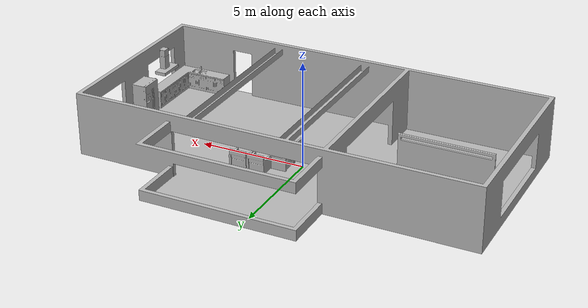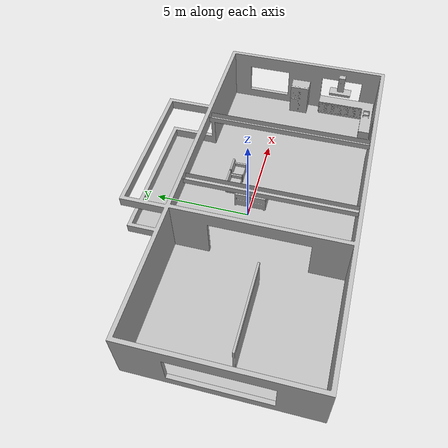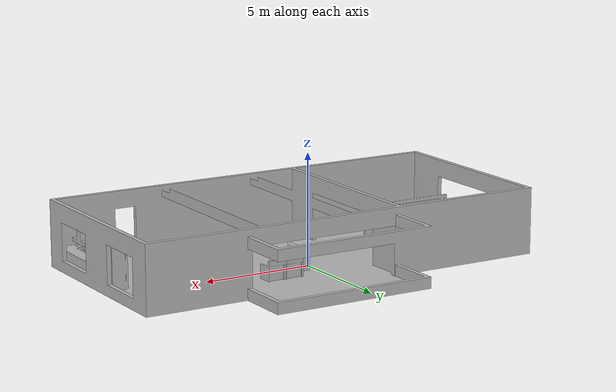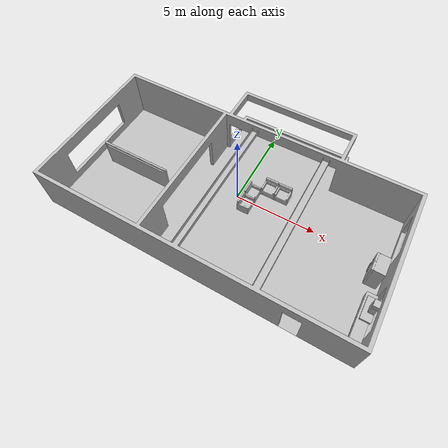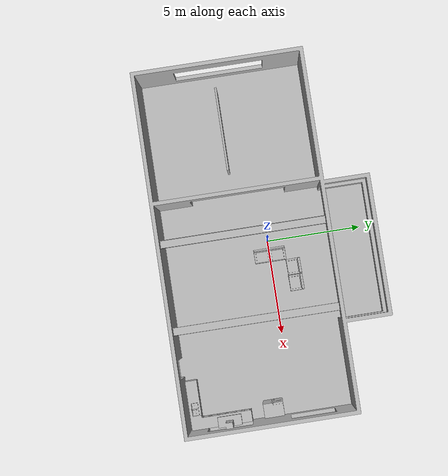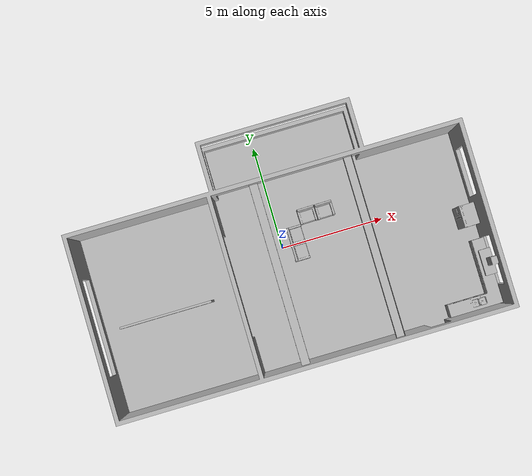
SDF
<sdf version="1.6">
 <world name="default">
  <gravity>0 0 -9.8</gravity>
  <magnetic_field>6e-06 2.3e-05 -4.2e-05</magnetic_field>
  <atmosphere type="adiabatic"/>
  <physics name="default_physics" default="0" type="ode">
   <max_step_size>0.001</max_step_size>
   <real_time_factor>1</real_time_factor>
   <real_time_update_rate>1000</real_time_update_rate>
  </physics>
  <scene>
   <ambient>0.4 0.4 0.4 1</ambient>
   <background>0.7 0.7 0.7 1</background>
   <shadows>1</shadows>
   <grid>false</grid>
   <origin_visual>false</origin_visual>
  </scene>
  <spherical_coordinates>
   <surface_model>EARTH_WGS84</surface_model>
   <latitude_deg>0</latitude_deg>
   <longitude_deg>0</longitude_deg>
   <elevation>0</elevation>
   <heading_deg>0</heading_deg>
  </spherical_coordinates>
  <model name="HouseWallB_01_001">
   <include><uri>model://aws_robomaker_residential_HouseWallB_01</uri></include>
  </model>
  <model name="FloorB_01_001"><include><uri>model://aws_robomaker_residential_FloorB_01</uri></include></model>
  <model name="KitchenCabinet_01_001">
   <include><uri>model://aws_robomaker_residential_KitchenCabinet_01</uri></include>
   <pose>8.002009 -3.836509 0.012068 0 -0 -3.140001</pose>
  </model>
  <model name="Rangehood_01_001">
   <include><uri>model://aws_robomaker_residential_Rangehood_01</uri></include>
   <pose>9.019794 -3.369940 1.507605 0 -0 0</pose>
  </model>
  <model name="Refrigerator_01_001">
   <include><uri>model://aws_robomaker_residential_Refrigerator_01</uri></include>
   <pose>8.702731 -1.032031 0 0 -0 -1.563499</pose>
  </model>
  <model name="SofaB_01_001">
   <include><uri>model://aws_robomaker_residential_SofaB_01</uri></include>
   <pose>0.775898 -0.411153 0.065992 -0.000464 -0.000071 0.005614</pose>
   <static>true</static>
  </model>
  <model name="SofaB_01_002">
   <include><uri>model://aws_robomaker_residential_SofaB_01</uri></include>
   <pose>0.775898 0.411153 0.065992 -0.000464 -0.000071 0.005614</pose>
   <static>true</static>
  </model>
  <model name="SofaB_01_003">
   <include><uri>model://aws_robomaker_residential_SofaB_01</uri></include>
   <pose>1.565898 1.177153 0.065992 -0.000464 -0.000071 -1.555614</pose>
   <static>true</static>
  </model>
  <model name="SofaB_01_004">
   <include><uri>model://aws_robomaker_residential_SofaB_01</uri></include>
   <pose>2.435898 1.177153 0.065992 -0.000464 -0.000071 -1.555614</pose>
   <static>true</static>
  </model>
  <model name="RoomWall_01_001">
   <include><uri>model://aws_robomaker_residential_RoomWall_01</uri></include>
   <pose>-6.097550 -1.496180 0.028124 0 -0 0</pose>
  </model>
  <light name="sun" type="directional">
   <pose>0 0 10 0 -0 0</pose>
   <diffuse>0.8 0.8 0.8 1</diffuse>
   <specular>0.2 0.2 0.2 1</specular>
   <attenuation>
    <range>1000</range>
    <constant>0.9</constant>
    <linear>0.01</linear>
    <quadratic>0.001</quadratic>
   </attenuation>
   <direction>-0.5 0.1 -0.9</direction>
  </light>
 </world>
</sdf>

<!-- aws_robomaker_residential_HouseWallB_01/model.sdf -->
<sdf version="1.6">
  <model name="aws_robomaker_residential_HouseWallB_01">
    <link name="link">
      <inertial>
        <mass>1</mass>
      </inertial>
      <collision name="collision">
        <geometry>
          <mesh>
            <uri>file://aws_robomaker_residential_HouseWallB_01/meshes/aws_HouseWallB_01_collision.DAE</uri>
            <scale>1 1 1</scale>
          </mesh>
        </geometry>
        <surface>
          <!--
          src: https://www.engineeringtoolbox.com/friction-coefficients-d_778.html
          Wood (Clean & Dry Surfaces): 0.6
          -->
            <friction>
              <ode>
                <mu>0.0</mu>
                <mu2>0.0</mu2>
              </ode>
            </friction>

          </surface>
      </collision>
      <visual name="visual">
	    <geometry>
          <mesh>
            <uri>file://aws_robomaker_residential_HouseWallB_01/meshes/aws_HouseWallB_01_visual.DAE</uri>
          </mesh>
        </geometry>
      <meta> <layer> 2 </layer></meta>
</visual>
    </link>
<static>1</static>
  </model>
</sdf>

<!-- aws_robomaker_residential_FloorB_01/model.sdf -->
<sdf version="1.6">
  <model name="aws_robomaker_residential_FloorB_01">
    <link name="link">
      <inertial>
        <mass>100</mass>
      </inertial>

      <collision name="collision">
        <geometry>
          <mesh>
            <uri>file://aws_robomaker_residential_FloorB_01/meshes/aws_FloorB_01_collision.DAE</uri>
            <scale>1 1 0.9</scale>
          </mesh>
        </geometry>

        <surface>

        <!--
        src: https://www.engineeringtoolbox.com/friction-coefficients-d_778.html
        Wood (Clean & Dry Surfaces): 0.6
        -->
          <friction>
            <ode>
              <mu>0.6</mu>
              <mu2>0.6</mu2>
            </ode>
          </friction>

        </surface>

      </collision>

      <visual name="visual">
	    <geometry>
          <mesh>
            <uri>file://aws_robomaker_residential_FloorB_01/meshes/aws_FloorB_01_visual.DAE</uri>
          </mesh>
        </geometry>
      <meta> <layer> 1 </layer></meta>
</visual>
    </link>

	<static>1</static>
  </model>
</sdf>

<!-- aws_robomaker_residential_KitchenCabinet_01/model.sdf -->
<sdf version="1.6">
  <model name="aws_robomaker_residential_KitchenCabinet_01">
    <link name="link">
      <inertial>
        <mass>1</mass>
      </inertial>
      <collision name="collision">
        <laser_retro>0</laser_retro>
        <max_contacts>10</max_contacts>
        <geometry>
          <mesh>
            <uri>file://aws_robomaker_residential_KitchenCabinet_01/meshes/aws_KitchenCabinet_01_collision.DAE</uri>
            <scale>1 1 1</scale>
          </mesh>
        </geometry>
        <surface>
          <!--
          src: https://www.engineeringtoolbox.com/friction-coefficients-d_778.html
          Wood (Clean & Dry Surfaces): 0.6
          -->
            <friction>
              <ode>
                <mu>0.0</mu>
                <mu2>0.0</mu2>
              </ode>
            </friction>

          </surface>

      </collision>
      <visual name="visual">
	    <geometry>
          <mesh>
            <uri>file://aws_robomaker_residential_KitchenCabinet_01/meshes/aws_KitchenCabinet_01_visual.DAE</uri>
          </mesh>
        </geometry>
      <meta> <layer> 1 </layer></meta>
</visual>
    </link>

    <static>1</static>
  </model>
</sdf>

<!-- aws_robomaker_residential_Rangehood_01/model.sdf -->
<sdf version="1.6">
  <model name="aws_robomaker_residential_Rangehood_01">
    <link name="link">
      <inertial>
        <mass>1</mass>
      </inertial>
      <collision name="collision">
        <geometry>
          <mesh>
            <uri>file://aws_robomaker_residential_Rangehood_01/meshes/aws_Rangehood_01_collision.DAE</uri>
            <scale>1 1 1</scale>
          </mesh>
        </geometry>
      </collision>
      <visual name="visual">
	    <geometry>
          <mesh>
            <uri>file://aws_robomaker_residential_Rangehood_01/meshes/aws_Rangehood_01_visual.DAE</uri>
          </mesh>
        </geometry>
      <meta> <layer> 2 </layer></meta>
</visual>
    </link>
	<static>1</static>
  </model>
</sdf>

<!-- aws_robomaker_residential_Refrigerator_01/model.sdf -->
<sdf version="1.6">
  <model name="aws_robomaker_residential_Refrigerator_01">
    <link name="link">
      <inertial>
        <mass>1</mass>
      </inertial>
      <collision name="collision">
        <geometry>
          <mesh>
            <uri>file://aws_robomaker_residential_Refrigerator_01/meshes/aws_Refrigerator_01_collision.DAE</uri>
            <scale>1 1 1</scale>
          </mesh>
        </geometry>
        <surface>
          <!--
          src: https://www.engineeringtoolbox.com/friction-coefficients-d_778.html
          Wood (Clean & Dry Surfaces): 0.6
          -->
            <friction>
              <ode>
                <mu>0.0</mu>
                <mu2>0.0</mu2>
              </ode>
            </friction>

          </surface>

      </collision>
      <visual name="visual">
	    <geometry>
          <mesh>
            <uri>file://aws_robomaker_residential_Refrigerator_01/meshes/aws_Refrigerator_01_visual.DAE</uri>
          </mesh>
        </geometry>
      <meta> <layer> 1 </layer></meta>
</visual>
    </link>
    <static>1</static>
  </model>
</sdf>

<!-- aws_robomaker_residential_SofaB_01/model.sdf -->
<sdf version="1.6">
  <model name="aws_robomaker_residential_SofaB_01">
    <link name="link">

      <inertial>
        <mass>72.5</mass>
      </inertial>

      <collision name="collision">

        <geometry>
          <mesh>
            <uri>file://aws_robomaker_residential_SofaB_01/meshes/aws_SofaB_01_collision.DAE</uri>
            <scale>1 1 1</scale>
          </mesh>
        </geometry>
        <surface>
        <!--
        src: https://www.engineeringtoolbox.com/friction-coefficients-d_778.html
        Wood (Clean & Dry Surfaces): 0.6
        -->
          <friction>
            <ode>
              <mu>0.0</mu>
              <mu2>0.0</mu2>
            </ode>
          </friction>
        </surface>
      </collision>
      <visual name="visual">
	    <geometry>
          <mesh>
            <uri>file://aws_robomaker_residential_SofaB_01/meshes/aws_SofaB_01_visual.DAE</uri>
          </mesh>
        </geometry>
      <meta> <layer> 1 </layer></meta>
</visual>
    </link>
  </model>
</sdf>

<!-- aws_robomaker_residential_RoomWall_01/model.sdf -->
<sdf version="1.6">
  <model name="aws_robomaker_residential_RoomWall_01">
    <link name="link">
      <inertial>
        <mass>100</mass>
      </inertial>
      <collision name="collision">
        <geometry>
          <mesh>
            <uri>file://aws_robomaker_residential_RoomWall_01/meshes/aws_RoomWall_01_collision.DAE</uri>
            <scale>1 1 1</scale>
          </mesh>
        </geometry>
      </collision>
      <visual name="visual">
	    <geometry>
          <mesh>
            <uri>file://aws_robomaker_residential_RoomWall_01/meshes/aws_RoomWall_01_visual.DAE</uri>
          </mesh>
        </geometry>
      <meta> <layer> 2 </layer></meta>
</visual>
    </link>
  <static>1</static>
  </model>
</sdf>
